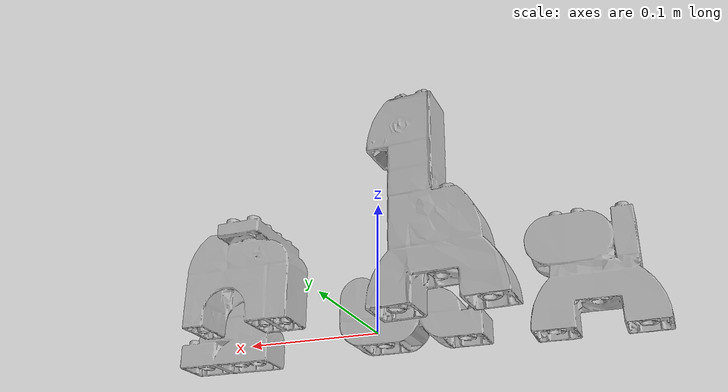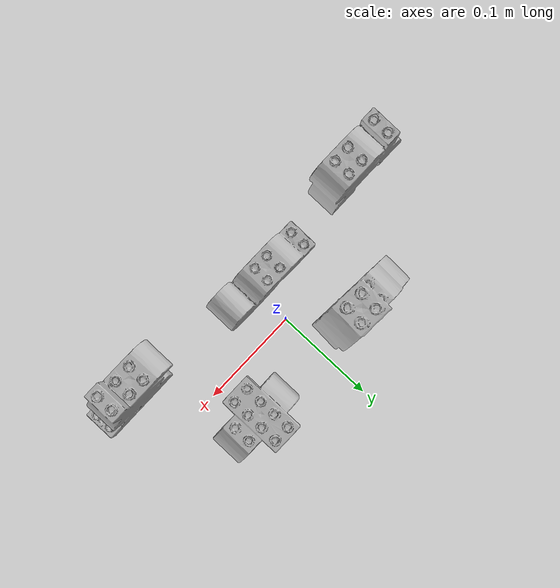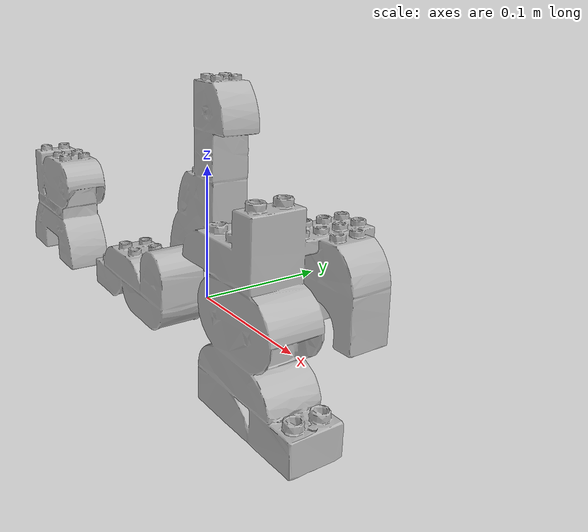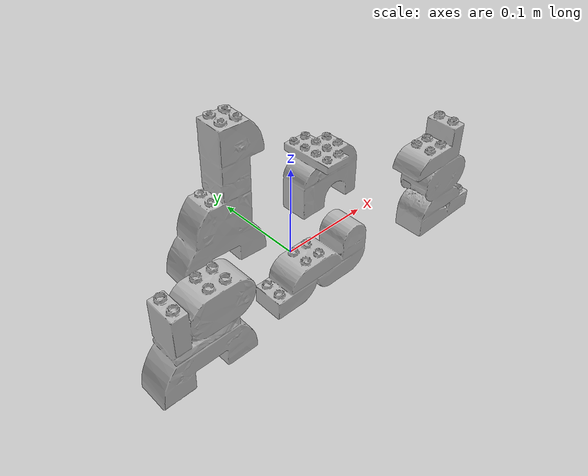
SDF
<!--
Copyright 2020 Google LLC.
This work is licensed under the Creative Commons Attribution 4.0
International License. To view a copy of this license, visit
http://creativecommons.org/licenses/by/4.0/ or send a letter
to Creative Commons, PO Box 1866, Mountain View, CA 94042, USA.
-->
<?xml version="1.0" ?>
<sdf version="1.6">
  <model name="LEGO_Duplo_Creative_Animals_10573">
    <link name="link_0">
      <visual name="visual">
        <geometry>
          <mesh>
            <uri>meshes/model.obj</uri>
          </mesh>
        </geometry>
      </visual>
      <collision name="collision_0">
        <geometry>
          <mesh>
            <uri>meshes/model.obj</uri>
          </mesh>
        </geometry>
      </collision>
    </link>
  </model>
</sdf>
